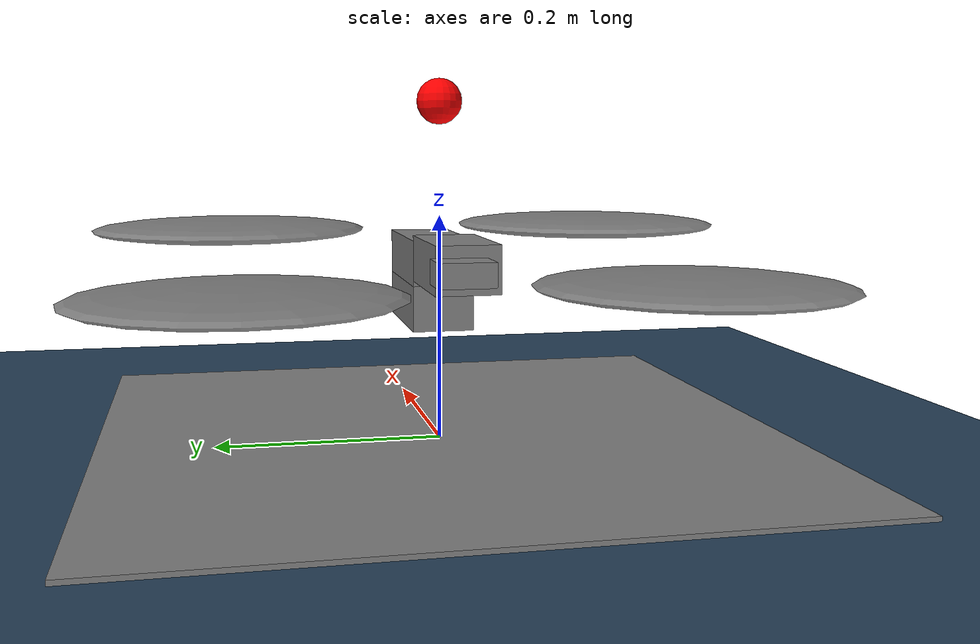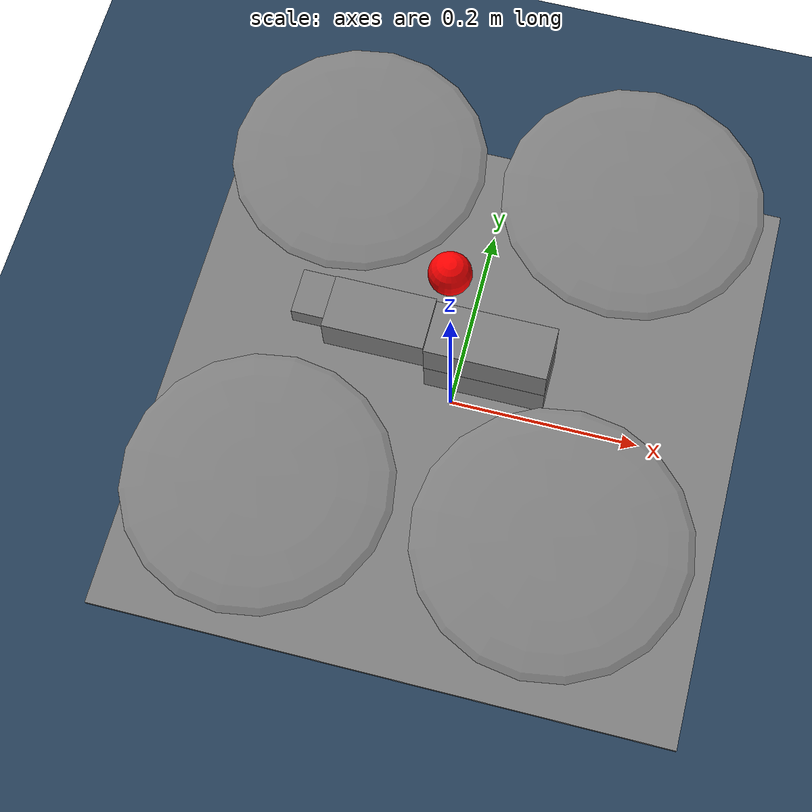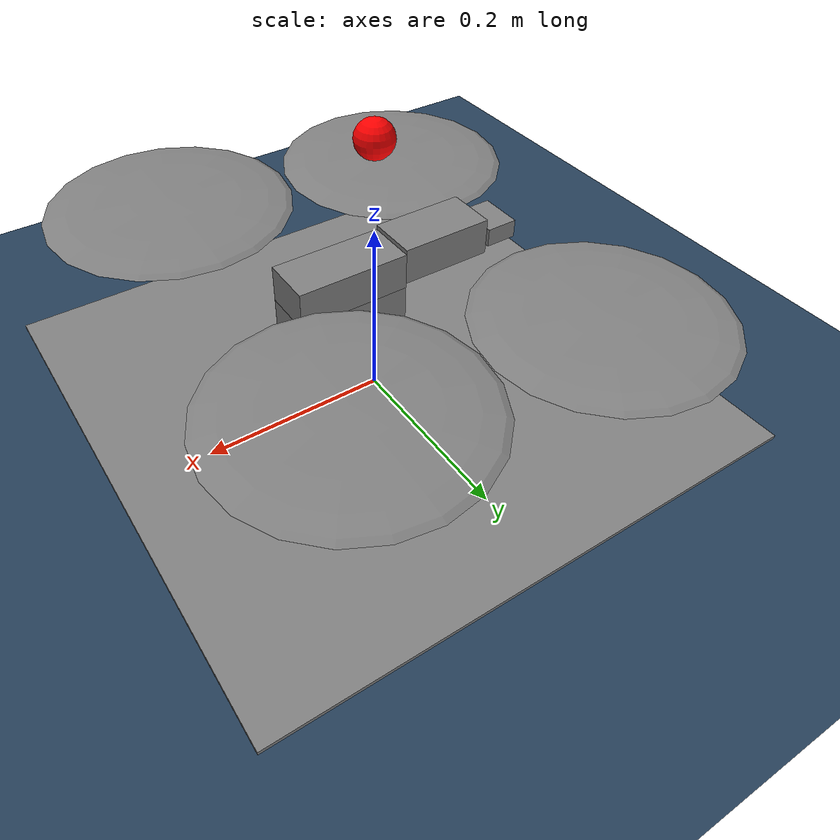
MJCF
<mujoco model="Skydio X2 scene">
  <include file="x2_mocap.xml"/>

  <statistic center="0 0 0.1" extent="0.6" meansize=".05"/>

  <visual>
    <headlight diffuse="0.6 0.6 0.6" ambient="0.3 0.3 0.3" specular="0 0 0"/>
    <rgba haze="0.15 0.25 0.35 1"/>
    <global azimuth="-20" elevation="-20" ellipsoidinertia="true"/>
  </visual>

  <asset>
    <texture type="skybox" builtin="gradient" rgb1="0.3 0.5 0.7" rgb2="0 0 0" width="512" height="3072"/>
    <texture type="2d" name="groundplane" builtin="checker" mark="edge" rgb1="0.2 0.3 0.4" rgb2="0.1 0.2 0.3"
      markrgb="0.8 0.8 0.8" width="300" height="300"/>
    <material name="groundplane" texture="groundplane" texuniform="true" texrepeat="5 5" reflectance="0.2"/>
    <texture type="2d" name="fiducial" builtin="checker" rgb1="1 1 1" rgb2="0 0 0" width="512" height="512"/>
    <material name="fiducial" texture="fiducial" texuniform="true" texrepeat="6 6"/>
    <mesh name="fiducial_mesh"
      vertex="-0.3 -0.3 0   0.3 -0.3 0   0.3 0.3 0   -0.3 0.3 0
              -0.3 -0.3 0.004   0.3 -0.3 0.004   0.3 0.3 0.004   -0.3 0.3 0.004"
      face="0 1 2  0 2 3   4 5 6  4 6 7
            0 1 5  0 5 4   1 2 6  1 6 5
            2 3 7  2 7 6   3 0 4  3 4 7"/>
  </asset>

  <worldbody>
    <light pos="0 0 1.5" dir="0 0 -1" directional="true"/>
    <geom name="floor" size="0 0 0.05" type="plane" material="groundplane"/>
    <geom name="fiducial_plate"
          type="mesh"
          mesh="fiducial_mesh"
          pos="0 0 0.002"
          material="fiducial"
          contype="0"
          conaffinity="0"/>
  </worldbody>
</mujoco>

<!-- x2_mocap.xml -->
<mujoco model="Skydio X2">
  <compiler autolimits="true" assetdir="../assets"/>

  <option timestep="0.01" density="1.225" viscosity="1.8e-5"/>

  <default>
    <default class="x2">
      <geom mass="0"/>
      <motor ctrlrange="0 13"/>
      <mesh scale="0.01 0.01 0.01"/>
      <default class="visual">
        <geom group="3" type="mesh" contype="0" conaffinity="0"/>
      </default>
      <default class="collision">
        <geom group="2" type="box"/>
        <default class="rotor">
          <geom type="ellipsoid" size=".13 .13 .01"/>
        </default>
      </default>
      <site group="5"/>
    </default>
  </default>

  <asset>
    <texture type="2d" file="X2_lowpoly_texture_SpinningProps_1024.png"/>
    <material name="phong3SG" texture="X2_lowpoly_texture_SpinningProps_1024"/>
    <material name="invisible" rgba="0 0 0 0"/>

    <mesh class="x2" file="X2_lowpoly.obj"/>

  </asset>

  <worldbody>
    <light name="spotlight" mode="targetbodycom" target="x2" pos="0 -1 2"/>
    <!-- Mocap body (no physics) -->
    <body name="mocap_drone" mocap="true" pos="0 0 0.3">
      <geom type="sphere" size="0.02" rgba="1 0 0 1"/>
    </body>
    <!-- Real dynamic body -->
    <body name="x2" pos="0 0 0.1" childclass="x2">
      <freejoint/>
      <camera name="track" pos="-1 0 .5" xyaxes="0 -1 0 1 0 2" mode="trackcom"/>
      <site name="imu" pos="0 0 .02"/>
      <geom material="phong3SG" mesh="X2_lowpoly" class="visual" quat="0 0 1 1"/>
      <geom class="collision" size=".06 .027 .02" pos=".04 0 .02"/>
      <geom class="collision" size=".06 .027 .02" pos=".04 0 .06"/>
      <geom class="collision" size=".05 .027 .02" pos="-.07 0 .065"/>
      <geom class="collision" size=".023 .017 .01" pos="-.137 .008 .065" quat="1 0 0 1"/>
      <geom name="rotor1" class="rotor" pos="-.14 -.18 .05" mass=".25"/>
      <geom name="rotor2" class="rotor" pos="-.14 .18 .05" mass=".25"/>
      <geom name="rotor3" class="rotor" pos=".14 .18 .08" mass=".25"/>
      <geom name="rotor4" class="rotor" pos=".14 -.18 .08" mass=".25"/>
      <geom size=".16 .04 .02" pos="0 0 0.02" type="ellipsoid" mass=".325" class="visual" material="invisible"/>
      <site name="thrust1" pos="-.14 -.18 .05"/>
      <site name="thrust2" pos="-.14 .18 .05"/>
      <site name="thrust3" pos=".14 .18 .08"/>
      <site name="thrust4" pos=".14 -.18 .08"/>
    </body>
  </worldbody>

  <!-- Weld constraint -->
  <equality>
    <weld body1="mocap_drone" body2="x2"/>
  </equality>

  <sensor>
    <framequat name="body_quat" objtype="site" objname="imu"/>
    <frameangvel name="body_angvel" objtype="site" objname="imu"/>
    <framelinacc name="body_linacc" objtype="site" objname="imu"/>
    <framelinvel name="body_linvel" objtype="site" objname="imu"/>

  </sensor>

</mujoco>
